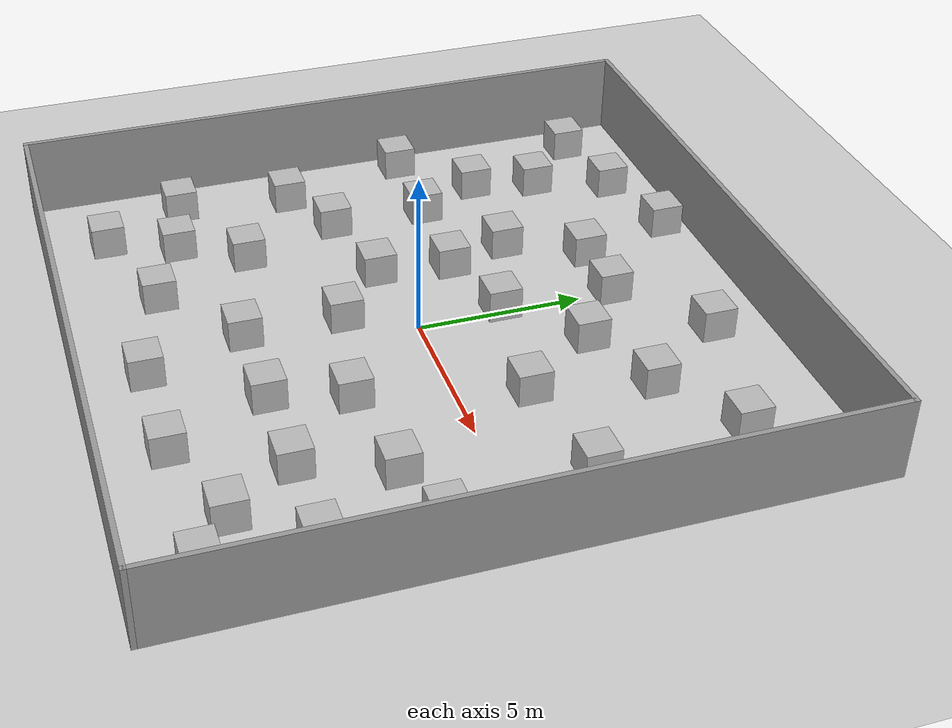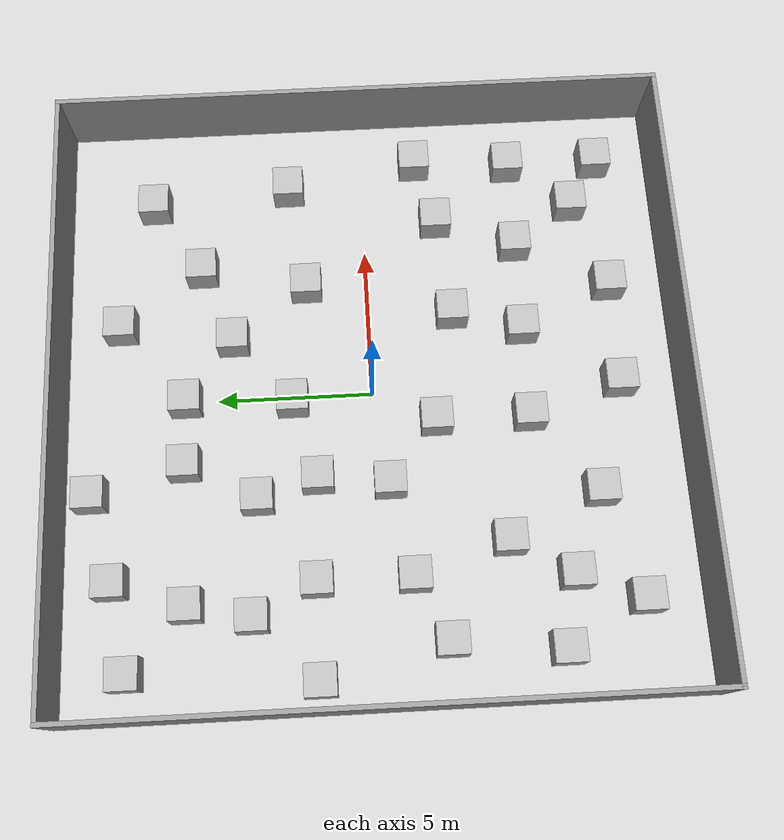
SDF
<sdf version="1.7">
 <world name="default">
  <light name="sun" type="directional">
   <pose>0 0 10 0 -0 0</pose>
   <diffuse>0.8 0.8 0.8 1</diffuse>
   <specular>0.2 0.2 0.2 1</specular>
   <attenuation>
    <range>1000</range>
    <constant>0.9</constant>
    <linear>0.01</linear>
    <quadratic>0.001</quadratic>
   </attenuation>
   <direction>-0.5 0.1 -0.9</direction>
   <spot><inner_angle>0</inner_angle><outer_angle>0</outer_angle><falloff>0</falloff></spot>
  </light>
  <model name="ground_plane">
   <static>1</static>
   <link name="link">
    <collision name="collision">
     <geometry><plane><normal>0 0 1</normal><size>100 100</size></plane></geometry>
     <surface><friction><ode><mu>100</mu><mu2>50</mu2></ode></friction></surface>
    </collision>
    <visual name="visual">
     <cast_shadows>0</cast_shadows>
     <geometry><plane><normal>0 0 1</normal><size>100 100</size></plane></geometry>
     <material>
      <script><uri>file://media/materials/scripts/gazebo.material</uri><name>Gazebo/Grey</name></script>
     </material>
    </visual>
   </link>
  </model>
  <gravity>0 0 -9.8</gravity>
  <magnetic_field>6e-06 2.3e-05 -4.2e-05</magnetic_field>
  <atmosphere type="adiabatic"/>
  <physics type="ode">
   <max_step_size>0.001</max_step_size>
   <real_time_factor>1</real_time_factor>
   <real_time_update_rate>1000</real_time_update_rate>
  </physics>
  <scene><ambient>0.4 0.4 0.4 1</ambient><background>0.7 0.7 0.7 1</background><shadows>1</shadows></scene>
  <spherical_coordinates>
   <surface_model>EARTH_WGS84</surface_model>
   <latitude_deg>0</latitude_deg>
   <longitude_deg>0</longitude_deg>
   <elevation>0</elevation>
   <heading_deg>0</heading_deg>
  </spherical_coordinates>
  <model name="square">
   <link name="Wall_41">
    <collision name="Wall_41_Collision">
     <geometry><box><size>20 0.15 2.5</size></box></geometry>
     <pose>0 0 1.25 0 -0 0</pose>
    </collision>
    <visual name="Wall_41_Visual">
     <pose>0 0 1.25 0 -0 0</pose>
     <geometry><box><size>20 0.15 2.5</size></box></geometry>
     <material>
      <script><uri>file://media/materials/scripts/gazebo.material</uri><name>Gazebo/Grey</name></script>
      <ambient>1 1 1 1</ambient>
     </material>
     <meta><layer>0</layer></meta>
    </visual>
    <pose>-9.925 0 0 0 -0 1.5708</pose>
   </link>
   <link name="Wall_42">
    <collision name="Wall_42_Collision">
     <geometry><box><size>20 0.15 2.5</size></box></geometry>
     <pose>0 0 1.25 0 -0 0</pose>
    </collision>
    <visual name="Wall_42_Visual">
     <pose>0 0 1.25 0 -0 0</pose>
     <geometry><box><size>20 0.15 2.5</size></box></geometry>
     <material>
      <script><uri>file://media/materials/scripts/gazebo.material</uri><name>Gazebo/Grey</name></script>
      <ambient>1 1 1 1</ambient>
     </material>
     <meta><layer>0</layer></meta>
    </visual>
    <pose>-0 9.925 0 0 -0 0</pose>
   </link>
   <link name="Wall_43">
    <collision name="Wall_43_Collision">
     <geometry><box><size>20 0.15 2.5</size></box></geometry>
     <pose>0 0 1.25 0 -0 0</pose>
    </collision>
    <visual name="Wall_43_Visual">
     <pose>0 0 1.25 0 -0 0</pose>
     <geometry><box><size>20 0.15 2.5</size></box></geometry>
     <material>
      <script><uri>file://media/materials/scripts/gazebo.material</uri><name>Gazebo/Grey</name></script>
      <ambient>1 1 1 1</ambient>
     </material>
     <meta><layer>0</layer></meta>
    </visual>
    <pose>9.925 0 0 0 -0 -1.5708</pose>
   </link>
   <link name="Wall_44">
    <collision name="Wall_44_Collision">
     <geometry><box><size>20 0.15 2.5</size></box></geometry>
     <pose>0 0 1.25 0 -0 0</pose>
    </collision>
    <visual name="Wall_44_Visual">
     <pose>0 0 1.25 0 -0 0</pose>
     <geometry><box><size>20 0.15 2.5</size></box></geometry>
     <material>
      <script><uri>file://media/materials/scripts/gazebo.material</uri><name>Gazebo/Grey</name></script>
      <ambient>1 1 1 1</ambient>
     </material>
     <meta><layer>0</layer></meta>
    </visual>
    <pose>-0 -9.925 0 0 -0 3.14159</pose>
   </link>
   <static>1</static>
  </model>
  <model name="test_box_clone">
   <pose>3.8312 1.99776 0.5 0 -0 0</pose>
   <link name="link">
    <collision name="collision"><geometry><box><size>1 1 1</size></box></geometry></collision>
    <visual name="visual"><geometry><box><size>1 1 1</size></box></geometry></visual>
    <inertial>
     <inertia><ixx>1</ixx><ixy>0</ixy><ixz>0</ixz><iyy>1</iyy><iyz>0</iyz><izz>1</izz></inertia>
     <mass>1</mass>
    </inertial>
   </link>
  </model>
  <model name="test_box_clone_clone">
   <pose>-3.32177 3.75945 0.5 0 -0 0</pose>
   <link name="link">
    <collision name="collision"><geometry><box><size>1 1 1</size></box></geometry></collision>
    <visual name="visual"><geometry><box><size>1 1 1</size></box></geometry></visual>
    <inertial>
     <inertia><ixx>1</ixx><ixy>0</ixy><ixz>0</ixz><iyy>1</iyy><iyz>0</iyz><izz>1</izz></inertia>
     <mass>1</mass>
    </inertial>
   </link>
  </model>
  <model name="test_box_clone_clone_0">
   <pose>2.65977 -2.7482 0.5 0 -0 0</pose>
   <link name="link">
    <collision name="collision"><geometry><box><size>1 1 1</size></box></geometry></collision>
    <visual name="visual"><geometry><box><size>1 1 1</size></box></geometry></visual>
    <inertial>
     <inertia><ixx>1</ixx><ixy>0</ixy><ixz>0</ixz><iyy>1</iyy><iyz>0</iyz><izz>1</izz></inertia>
     <mass>1</mass>
    </inertial>
   </link>
  </model>
  <model name="test_box_clone_clone_1">
   <pose>6 -2.4212 0.5 0 -0 0</pose>
   <link name="link">
    <collision name="collision"><geometry><box><size>1 1 1</size></box></geometry></collision>
    <visual name="visual"><geometry><box><size>1 1 1</size></box></geometry></visual>
    <inertial>
     <inertia><ixx>1</ixx><ixy>0</ixy><ixz>0</ixz><iyy>1</iyy><iyz>0</iyz><izz>1</izz></inertia>
     <mass>1</mass>
    </inertial>
   </link>
  </model>
  <model name="test_box_clone_clone_2">
   <pose>-3 -0.412466 0.5 0 -0 0</pose>
   <link name="link">
    <collision name="collision"><geometry><box><size>1 1 1</size></box></geometry></collision>
    <visual name="visual"><geometry><box><size>1 1 1</size></box></geometry></visual>
    <inertial>
     <inertia><ixx>1</ixx><ixy>0</ixy><ixz>0</ixz><iyy>1</iyy><iyz>0</iyz><izz>1</izz></inertia>
     <mass>1</mass>
    </inertial>
   </link>
  </model>
  <model name="test_box_clone_clone_3">
   <pose>4.54603 5.43115 0.5 0 -0 0</pose>
   <link name="link">
    <collision name="collision"><geometry><box><size>1 1 1</size></box></geometry></collision>
    <visual name="visual"><geometry><box><size>1 1 1</size></box></geometry></visual>
    <inertial>
     <inertia><ixx>1</ixx><ixy>0</ixy><ixz>0</ixz><iyy>1</iyy><iyz>0</iyz><izz>1</izz></inertia>
     <mass>1</mass>
    </inertial>
   </link>
  </model>
  <model name="test_box_clone_clone_4">
   <pose>-0 6 0.5 0 -0 0</pose>
   <link name="link">
    <collision name="collision"><geometry><box><size>1 1 1</size></box></geometry></collision>
    <visual name="visual"><geometry><box><size>1 1 1</size></box></geometry></visual>
    <inertial>
     <inertia><ixx>1</ixx><ixy>0</ixy><ixz>0</ixz><iyy>1</iyy><iyz>0</iyz><izz>1</izz></inertia>
     <mass>1</mass>
    </inertial>
   </link>
  </model>
  <model name="test_box_clone_clone_5">
   <pose>-1 -2 0.5 0 -0 0</pose>
   <link name="link">
    <collision name="collision"><geometry><box><size>1 1 1</size></box></geometry></collision>
    <visual name="visual"><geometry><box><size>1 1 1</size></box></geometry></visual>
    <inertial>
     <inertia><ixx>1</ixx><ixy>0</ixy><ixz>0</ixz><iyy>1</iyy><iyz>0</iyz><izz>1</izz></inertia>
     <mass>1</mass>
    </inertial>
   </link>
  </model>
  <model name="test_box_clone_clone_6">
   <pose>7.43451 2.47735 0.5 0 -0 0</pose>
   <link name="link">
    <collision name="collision"><geometry><box><size>1 1 1</size></box></geometry></collision>
    <visual name="visual"><geometry><box><size>1 1 1</size></box></geometry></visual>
    <inertial>
     <inertia><ixx>1</ixx><ixy>0</ixy><ixz>0</ixz><iyy>1</iyy><iyz>0</iyz><izz>1</izz></inertia>
     <mass>1</mass>
    </inertial>
   </link>
  </model>
  <model name="test_box_clone_clone_7">
   <pose>7 7 0.5 0 -0 0</pose>
   <link name="link">
    <collision name="collision"><geometry><box><size>1 1 1</size></box></geometry></collision>
    <visual name="visual"><geometry><box><size>1 1 1</size></box></geometry></visual>
    <inertial>
     <inertia><ixx>1</ixx><ixy>0</ixy><ixz>0</ixz><iyy>1</iyy><iyz>0</iyz><izz>1</izz></inertia>
     <mass>1</mass>
    </inertial>
   </link>
  </model>
  <model name="test_box_clone_clone_8">
   <pose>2.62333 8.09922 0.5 0 -0 0</pose>
   <link name="link">
    <collision name="collision"><geometry><box><size>1 1 1</size></box></geometry></collision>
    <visual name="visual"><geometry><box><size>1 1 1</size></box></geometry></visual>
    <inertial>
     <inertia><ixx>1</ixx><ixy>0</ixy><ixz>0</ixz><iyy>1</iyy><iyz>0</iyz><izz>1</izz></inertia>
     <mass>1</mass>
    </inertial>
   </link>
  </model>
  <model name="test_box_clone_clone_9">
   <pose>-0.160102 2.5697 0.5 0 -0 0</pose>
   <link name="link">
    <collision name="collision"><geometry><box><size>1 1 1</size></box></geometry></collision>
    <visual name="visual"><geometry><box><size>1 1 1</size></box></geometry></visual>
    <inertial>
     <inertia><ixx>1</ixx><ixy>0</ixy><ixz>0</ixz><iyy>1</iyy><iyz>0</iyz><izz>1</izz></inertia>
     <mass>1</mass>
    </inertial>
   </link>
  </model>
  <model name="test_box_clone_clone_10">
   <pose>8.21598 -1.82786 0.5 0 -0 0</pose>
   <link name="link">
    <collision name="collision"><geometry><box><size>1 1 1</size></box></geometry></collision>
    <visual name="visual"><geometry><box><size>1 1 1</size></box></geometry></visual>
    <inertial>
     <inertia><ixx>1</ixx><ixy>0</ixy><ixz>0</ixz><iyy>1</iyy><iyz>0</iyz><izz>1</izz></inertia>
     <mass>1</mass>
    </inertial>
   </link>
  </model>
  <model name="test_box_clone_clone_11">
   <pose>8 -5 0.5 0 -0 0</pose>
   <link name="link">
    <collision name="collision"><geometry><box><size>1 1 1</size></box></geometry></collision>
    <visual name="visual"><geometry><box><size>1 1 1</size></box></geometry></visual>
    <inertial>
     <inertia><ixx>1</ixx><ixy>0</ixy><ixz>0</ixz><iyy>1</iyy><iyz>0</iyz><izz>1</izz></inertia>
     <mass>1</mass>
    </inertial>
   </link>
  </model>
  <model name="test_box_clone_clone_12">
   <pose>5 -5 0.5 0 -0 0</pose>
   <link name="link">
    <collision name="collision"><geometry><box><size>1 1 1</size></box></geometry></collision>
    <visual name="visual"><geometry><box><size>1 1 1</size></box></geometry></visual>
    <inertial>
     <inertia><ixx>1</ixx><ixy>0</ixy><ixz>0</ixz><iyy>1</iyy><iyz>0</iyz><izz>1</izz></inertia>
     <mass>1</mass>
    </inertial>
   </link>
  </model>
  <model name="test_box_clone_clone_13">
   <pose>2 -5 0.5 0 -0 0</pose>
   <link name="link">
    <collision name="collision"><geometry><box><size>1 1 1</size></box></geometry></collision>
    <visual name="visual"><geometry><box><size>1 1 1</size></box></geometry></visual>
    <inertial>
     <inertia><ixx>1</ixx><ixy>0</ixy><ixz>0</ixz><iyy>1</iyy><iyz>0</iyz><izz>1</izz></inertia>
     <mass>1</mass>
    </inertial>
   </link>
  </model>
  <model name="test_box_clone_clone_14">
   <pose>6.40726 -7 0.5 0 -0 0</pose>
   <link name="link">
    <collision name="collision"><geometry><box><size>1 1 1</size></box></geometry></collision>
    <visual name="visual"><geometry><box><size>1 1 1</size></box></geometry></visual>
    <inertial>
     <inertia><ixx>1</ixx><ixy>0</ixy><ixz>0</ixz><iyy>1</iyy><iyz>0</iyz><izz>1</izz></inertia>
     <mass>1</mass>
    </inertial>
   </link>
  </model>
  <model name="test_box_clone_clone_15">
   <pose>3.41571 -8 0.5 0 -0 0</pose>
   <link name="link">
    <collision name="collision"><geometry><box><size>1 1 1</size></box></geometry></collision>
    <visual name="visual"><geometry><box><size>1 1 1</size></box></geometry></visual>
    <inertial>
     <inertia><ixx>1</ixx><ixy>0</ixy><ixz>0</ixz><iyy>1</iyy><iyz>0</iyz><izz>1</izz></inertia>
     <mass>1</mass>
    </inertial>
   </link>
  </model>
  <model name="test_box_clone_clone_16">
   <pose>8 -8 0.5 0 -0 0</pose>
   <link name="link">
    <collision name="collision"><geometry><box><size>1 1 1</size></box></geometry></collision>
    <visual name="visual"><geometry><box><size>1 1 1</size></box></geometry></visual>
    <inertial>
     <inertia><ixx>1</ixx><ixy>0</ixy><ixz>0</ixz><iyy>1</iyy><iyz>0</iyz><izz>1</izz></inertia>
     <mass>1</mass>
    </inertial>
   </link>
  </model>
  <model name="test_box_clone_clone_17">
   <pose>-0 -8 0.5 0 -0 0</pose>
   <link name="link">
    <collision name="collision"><geometry><box><size>1 1 1</size></box></geometry></collision>
    <visual name="visual"><geometry><box><size>1 1 1</size></box></geometry></visual>
    <inertial>
     <inertia><ixx>1</ixx><ixy>0</ixy><ixz>0</ixz><iyy>1</iyy><iyz>0</iyz><izz>1</izz></inertia>
     <mass>1</mass>
    </inertial>
   </link>
  </model>
  <model name="test_box_clone_clone_18">
   <pose>-1 -5 0.5 0 -0 0</pose>
   <link name="link">
    <collision name="collision"><geometry><box><size>1 1 1</size></box></geometry></collision>
    <visual name="visual"><geometry><box><size>1 1 1</size></box></geometry></visual>
    <inertial>
     <inertia><ixx>1</ixx><ixy>0</ixy><ixz>0</ixz><iyy>1</iyy><iyz>0</iyz><izz>1</izz></inertia>
     <mass>1</mass>
    </inertial>
   </link>
  </model>
  <model name="test_box_clone_clone_19">
   <pose>-3.58278 -7 0.5 0 -0 0</pose>
   <link name="link">
    <collision name="collision"><geometry><box><size>1 1 1</size></box></geometry></collision>
    <visual name="visual"><geometry><box><size>1 1 1</size></box></geometry></visual>
    <inertial>
     <inertia><ixx>1</ixx><ixy>0</ixy><ixz>0</ixz><iyy>1</iyy><iyz>0</iyz><izz>1</izz></inertia>
     <mass>1</mass>
    </inertial>
   </link>
  </model>
  <model name="test_box_clone_clone_20">
   <pose>-5 -4 0.5 0 -0 0</pose>
   <link name="link">
    <collision name="collision"><geometry><box><size>1 1 1</size></box></geometry></collision>
    <visual name="visual"><geometry><box><size>1 1 1</size></box></geometry></visual>
    <inertial>
     <inertia><ixx>1</ixx><ixy>0</ixy><ixz>0</ixz><iyy>1</iyy><iyz>0</iyz><izz>1</izz></inertia>
     <mass>1</mass>
    </inertial>
   </link>
  </model>
  <model name="test_box_clone_clone_21">
   <pose>-7 -8 0.5 0 -0 0</pose>
   <link name="link">
    <collision name="collision"><geometry><box><size>1 1 1</size></box></geometry></collision>
    <visual name="visual"><geometry><box><size>1 1 1</size></box></geometry></visual>
    <inertial>
     <inertia><ixx>1</ixx><ixy>0</ixy><ixz>0</ixz><iyy>1</iyy><iyz>0</iyz><izz>1</izz></inertia>
     <mass>1</mass>
    </inertial>
   </link>
  </model>
  <model name="test_box_clone_clone_22">
   <pose>-8.40709 -5.46061 0.5 0 -0 0</pose>
   <link name="link">
    <collision name="collision"><geometry><box><size>1 1 1</size></box></geometry></collision>
    <visual name="visual"><geometry><box><size>1 1 1</size></box></geometry></visual>
    <inertial>
     <inertia><ixx>1</ixx><ixy>0</ixy><ixz>0</ixz><iyy>1</iyy><iyz>0</iyz><izz>1</izz></inertia>
     <mass>1</mass>
    </inertial>
   </link>
  </model>
  <model name="test_box_clone_clone_23">
   <pose>-6.15258 -5.94375 0.5 0 -0 0</pose>
   <link name="link">
    <collision name="collision"><geometry><box><size>1 1 1</size></box></geometry></collision>
    <visual name="visual"><geometry><box><size>1 1 1</size></box></geometry></visual>
    <inertial>
     <inertia><ixx>1</ixx><ixy>0</ixy><ixz>0</ixz><iyy>1</iyy><iyz>0</iyz><izz>1</izz></inertia>
     <mass>1</mass>
    </inertial>
   </link>
  </model>
  <model name="test_box_clone_clone_24">
   <pose>-6 -1 0.5 0 -0 0</pose>
   <link name="link">
    <collision name="collision"><geometry><box><size>1 1 1</size></box></geometry></collision>
    <visual name="visual"><geometry><box><size>1 1 1</size></box></geometry></visual>
    <inertial>
     <inertia><ixx>1</ixx><ixy>0</ixy><ixz>0</ixz><iyy>1</iyy><iyz>0</iyz><izz>1</izz></inertia>
     <mass>1</mass>
    </inertial>
   </link>
  </model>
  <model name="test_box_clone_clone_25">
   <pose>-8 -2 0.5 0 -0 0</pose>
   <link name="link">
    <collision name="collision"><geometry><box><size>1 1 1</size></box></geometry></collision>
    <visual name="visual"><geometry><box><size>1 1 1</size></box></geometry></visual>
    <inertial>
     <inertia><ixx>1</ixx><ixy>0</ixy><ixz>0</ixz><iyy>1</iyy><iyz>0</iyz><izz>1</izz></inertia>
     <mass>1</mass>
    </inertial>
   </link>
  </model>
  <model name="test_box_clone_clone_26">
   <pose>-9 2 0.5 0 -0 0</pose>
   <link name="link">
    <collision name="collision"><geometry><box><size>1 1 1</size></box></geometry></collision>
    <visual name="visual"><geometry><box><size>1 1 1</size></box></geometry></visual>
    <inertial>
     <inertia><ixx>1</ixx><ixy>0</ixy><ixz>0</ixz><iyy>1</iyy><iyz>0</iyz><izz>1</izz></inertia>
     <mass>1</mass>
    </inertial>
   </link>
  </model>
  <model name="test_box_clone_clone_27">
   <pose>-6 2 0.5 0 -0 0</pose>
   <link name="link">
    <collision name="collision"><geometry><box><size>1 1 1</size></box></geometry></collision>
    <visual name="visual"><geometry><box><size>1 1 1</size></box></geometry></visual>
    <inertial>
     <inertia><ixx>1</ixx><ixy>0</ixy><ixz>0</ixz><iyy>1</iyy><iyz>0</iyz><izz>1</izz></inertia>
     <mass>1</mass>
    </inertial>
   </link>
  </model>
  <model name="test_box_clone_clone_28">
   <pose>-2.73545 1.85216 0.5 0 -0 0</pose>
   <link name="link">
    <collision name="collision"><geometry><box><size>1 1 1</size></box></geometry></collision>
    <visual name="visual"><geometry><box><size>1 1 1</size></box></geometry></visual>
    <inertial>
     <inertia><ixx>1</ixx><ixy>0</ixy><ixz>0</ixz><iyy>1</iyy><iyz>0</iyz><izz>1</izz></inertia>
     <mass>1</mass>
    </inertial>
   </link>
  </model>
  <model name="test_box_clone_clone_29">
   <pose>-2.13537 6.04649 0.5 0 -0 0</pose>
   <link name="link">
    <collision name="collision"><geometry><box><size>1 1 1</size></box></geometry></collision>
    <visual name="visual"><geometry><box><size>1 1 1</size></box></geometry></visual>
    <inertial>
     <inertia><ixx>1</ixx><ixy>0</ixy><ixz>0</ixz><iyy>1</iyy><iyz>0</iyz><izz>1</izz></inertia>
     <mass>1</mass>
    </inertial>
   </link>
  </model>
  <model name="test_box_clone_clone_30">
   <pose>-3 9 0.5 0 -0 0</pose>
   <link name="link">
    <collision name="collision"><geometry><box><size>1 1 1</size></box></geometry></collision>
    <visual name="visual"><geometry><box><size>1 1 1</size></box></geometry></visual>
    <inertial>
     <inertia><ixx>1</ixx><ixy>0</ixy><ixz>0</ixz><iyy>1</iyy><iyz>0</iyz><izz>1</izz></inertia>
     <mass>1</mass>
    </inertial>
   </link>
  </model>
  <model name="test_box_clone_clone_31">
   <pose>-6.58246 6 0.5 0 -0 0</pose>
   <link name="link">
    <collision name="collision"><geometry><box><size>1 1 1</size></box></geometry></collision>
    <visual name="visual"><geometry><box><size>1 1 1</size></box></geometry></visual>
    <inertial>
     <inertia><ixx>1</ixx><ixy>0</ixy><ixz>0</ixz><iyy>1</iyy><iyz>0</iyz><izz>1</izz></inertia>
     <mass>1</mass>
    </inertial>
   </link>
  </model>
  <model name="test_box_clone_clone_32">
   <pose>-7 4 0.5 0 -0 0</pose>
   <link name="link">
    <collision name="collision"><geometry><box><size>1 1 1</size></box></geometry></collision>
    <visual name="visual"><geometry><box><size>1 1 1</size></box></geometry></visual>
    <inertial>
     <inertia><ixx>1</ixx><ixy>0</ixy><ixz>0</ixz><iyy>1</iyy><iyz>0</iyz><izz>1</izz></inertia>
     <mass>1</mass>
    </inertial>
   </link>
  </model>
  <model name="test_box_clone_clone_33">
   <pose>-8.53003 7.85293 0.5 0 -0 0</pose>
   <link name="link">
    <collision name="collision"><geometry><box><size>1 1 1</size></box></geometry></collision>
    <visual name="visual"><geometry><box><size>1 1 1</size></box></geometry></visual>
    <inertial>
     <inertia><ixx>1</ixx><ixy>0</ixy><ixz>0</ixz><iyy>1</iyy><iyz>0</iyz><izz>1</izz></inertia>
     <mass>1</mass>
    </inertial>
   </link>
  </model>
  <model name="test_box_clone_clone_34">
   <pose>-5.77237 8.32272 0.5 0 -0 0</pose>
   <link name="link">
    <collision name="collision"><geometry><box><size>1 1 1</size></box></geometry></collision>
    <visual name="visual"><geometry><box><size>1 1 1</size></box></geometry></visual>
    <inertial>
     <inertia><ixx>1</ixx><ixy>0</ixy><ixz>0</ixz><iyy>1</iyy><iyz>0</iyz><izz>1</izz></inertia>
     <mass>1</mass>
    </inertial>
   </link>
  </model>
  <model name="test_box_clone_clone_35">
   <pose>2.03472 4.44229 0.5 0 -0 0</pose>
   <link name="link">
    <collision name="collision"><geometry><box><size>1 1 1</size></box></geometry></collision>
    <visual name="visual"><geometry><box><size>1 1 1</size></box></geometry></visual>
    <inertial>
     <inertia><ixx>1</ixx><ixy>0</ixy><ixz>0</ixz><iyy>1</iyy><iyz>0</iyz><izz>1</izz></inertia>
     <mass>1</mass>
    </inertial>
   </link>
  </model>
 </world>
</sdf>
